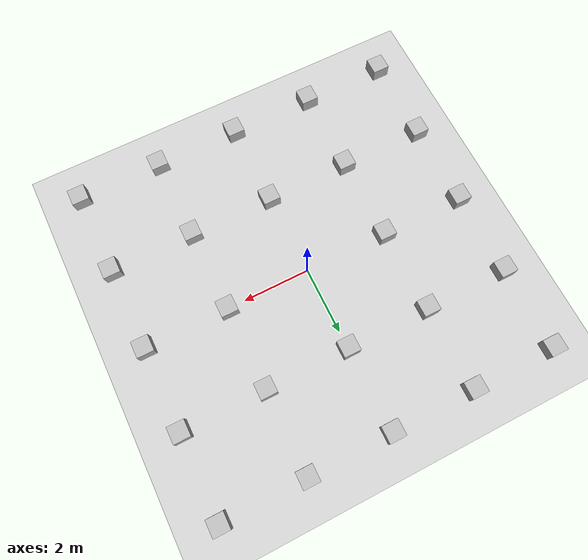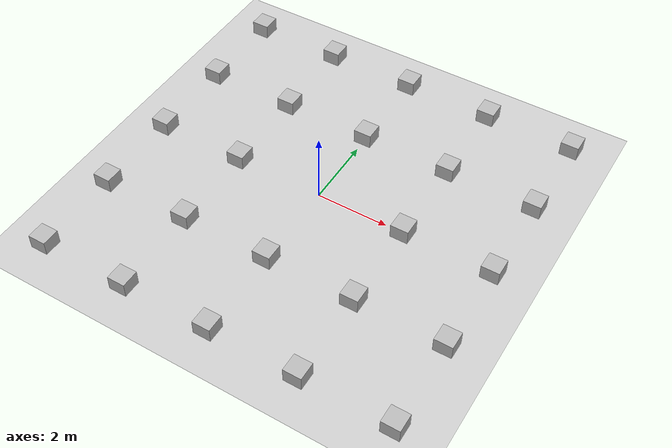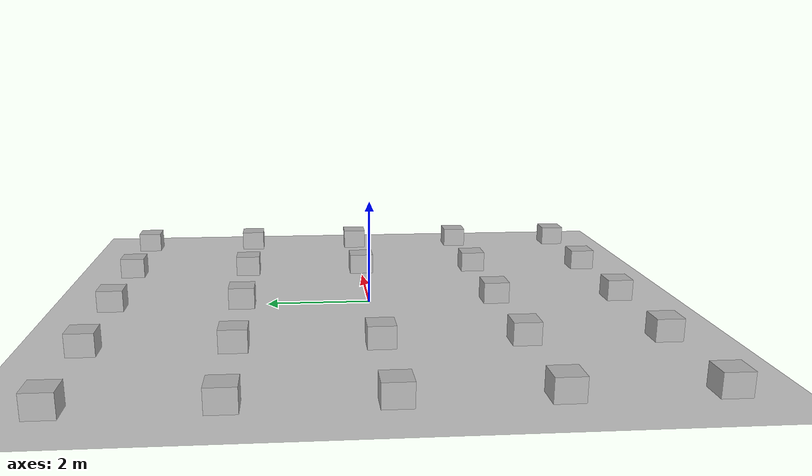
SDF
<?xml version="1.0" ?>
<sdf version="1.8">
  <world name="world_demo">
    <physics name="1ms" type="sdformat">
      <max_step_size>0.001</max_step_size>
      <real_time_factor>1.0</real_time_factor>
    </physics>
    <plugin
      filename="libignition-gazebo-physics-system.so"
      name="ignition::gazebo::systems::Physics">
    </plugin>
    <plugin
      filename="libignition-gazebo-user-commands-system.so"
      name="ignition::gazebo::systems::UserCommands">
    </plugin>
    <plugin
      filename="libignition-gazebo-scene-broadcaster-system.so"
      name="ignition::gazebo::systems::SceneBroadcaster">
    </plugin>
    <!--LiDAR -->
    <plugin
      filename="libignition-gazebo-sensors-system.so"
      name="ignition::gazebo::systems::Sensors">
      <render_engine>ogre2</render_engine>
    </plugin>
    <!--light-->
    <light type="directional" name="sun">
      <cast_shadows>true</cast_shadows>
      <pose>0 0 10 0 0 0</pose>
      <diffuse>0.8 0.8 0.8 1</diffuse>
      <specular>0.2 0.2 0.2 1</specular>
      <attenuation>
        <range>1000</range>
        <constant>0.9</constant>
        <linear>0.01</linear>
        <quadratic>0.001</quadratic>
      </attenuation>
      <direction>-0.5 0.1 -0.9</direction>
    </light>

    <model name="ground_plane">
            <static>true</static>
            <link name="link">
                <collision name="collision">
                <geometry>
                    <plane>
                    <normal>0 0 1</normal>
                    </plane>
                </geometry>
                </collision>
                <visual name="visual">
                <geometry>
                    <plane>
                    <normal>0 0 1</normal>
                    <size>100 100</size>
                    </plane>
                </geometry>
                <material>
                    <ambient>0.8 0.8 0.8 1</ambient>
                    <diffuse>0.8 0.8 0.8 1</diffuse>
                    <specular>0.8 0.8 0.8 1</specular>
                </material>
                </visual>
            </link>
    </model>

    <!-- Box at (1, 0) -->
        <!-- row 0 -->
    <model name="cube_0_0"><pose>-5.0 -5.0 0.15 0 0 0</pose><link name="link"><collision name="collision"><geometry><box><size>0.5 0.5 0.5</size></box></geometry></collision><visual name="visual"><geometry><box><size>0.5 0.5 0.5</size></box></geometry></visual></link></model>
    <model name="cube_0_1"><pose>-5.0 -2.5 0.15 0 0 0</pose><link name="link"><collision name="collision"><geometry><box><size>0.5 0.5 0.5</size></box></geometry></collision><visual name="visual"><geometry><box><size>0.5 0.5 0.5</size></box></geometry></visual></link></model>
    <model name="cube_0_2"><pose>-5.0 0.0 0.15 0 0 0</pose><link name="link"><collision name="collision"><geometry><box><size>0.5 0.5 0.5</size></box></geometry></collision><visual name="visual"><geometry><box><size>0.5 0.5 0.5</size></box></geometry></visual></link></model>
    <model name="cube_0_3"><pose>-5.0 2.5 0.15 0 0 0</pose><link name="link"><collision name="collision"><geometry><box><size>0.5 0.5 0.5</size></box></geometry></collision><visual name="visual"><geometry><box><size>0.5 0.5 0.5</size></box></geometry></visual></link></model>
    <model name="cube_0_4"><pose>-5.0 5.0 0.15 0 0 0</pose><link name="link"><collision name="collision"><geometry><box><size>0.5 0.5 0.5</size></box></geometry></collision><visual name="visual"><geometry><box><size>0.5 0.5 0.5</size></box></geometry></visual></link></model>

    <model name="cube_1_0"><pose>-2.5 -5.0 0.15 0 0 0</pose><link name="link"><collision name="collision"><geometry><box><size>0.3 0.3 0.3</size></box></geometry></collision><visual name="visual"><geometry><box><size>0.5 0.5 0.5</size></box></geometry></visual></link></model>
    <model name="cube_1_1"><pose>-2.5 -2.5 0.15 0 0 0</pose><link name="link"><collision name="collision"><geometry><box><size>0.3 0.3 0.3</size></box></geometry></collision><visual name="visual"><geometry><box><size>0.5 0.5 0.5</size></box></geometry></visual></link></model>
    <model name="cube_1_2"><pose>-2.5 0.0 0.15 0 0 0</pose><link name="link"><collision name="collision"><geometry><box><size>0.3 0.3 0.3</size></box></geometry></collision><visual name="visual"><geometry><box><size>0.5 0.5 0.5</size></box></geometry></visual></link></model>
    <model name="cube_1_3"><pose>-2.5 2.5 0.15 0 0 0</pose><link name="link"><collision name="collision"><geometry><box><size>0.3 0.3 0.3</size></box></geometry></collision><visual name="visual"><geometry><box><size>0.5 0.5 0.5</size></box></geometry></visual></link></model>
    <model name="cube_1_4"><pose>-2.5 5.0 0.15 0 0 0</pose><link name="link"><collision name="collision"><geometry><box><size>0.3 0.3 0.3</size></box></geometry></collision><visual name="visual"><geometry><box><size>0.5 0.5 0.5</size></box></geometry></visual></link></model>

    <model name="cube_2_0"><pose>0.0 -5.0 0.15 0 0 0</pose><link name="link"><collision name="collision"><geometry><box><size>0.3 0.3 0.3</size></box></geometry></collision><visual name="visual"><geometry><box><size>0.5 0.5 0.5</size></box></geometry></visual></link></model>
    <model name="cube_2_1"><pose>0.0 -2.5 0.15 0 0 0</pose><link name="link"><collision name="collision"><geometry><box><size>0.3 0.3 0.3</size></box></geometry></collision><visual name="visual"><geometry><box><size>0.5 0.5 0.5</size></box></geometry></visual></link></model>
    <model name="cube_2_3"><pose>0.0 2.5 0.15 0 0 0</pose><link name="link"><collision name="collision"><geometry><box><size>0.3 0.3 0.3</size></box></geometry></collision><visual name="visual"><geometry><box><size>0.5 0.5 0.5</size></box></geometry></visual></link></model>
    <model name="cube_2_4"><pose>0.0 5.0 0.15 0 0 0</pose><link name="link"><collision name="collision"><geometry><box><size>0.3 0.3 0.3</size></box></geometry></collision><visual name="visual"><geometry><box><size>0.5 0.5 0.5</size></box></geometry></visual></link></model>

    <model name="cube_3_0"><pose>2.5 -5.0 0.15 0 0 0</pose><link name="link"><collision name="collision"><geometry><box><size>0.3 0.3 0.3</size></box></geometry></collision><visual name="visual"><geometry><box><size>0.5 0.5 0.5</size></box></geometry></visual></link></model>
    <model name="cube_3_1"><pose>2.5 -2.5 0.15 0 0 0</pose><link name="link"><collision name="collision"><geometry><box><size>0.3 0.3 0.3</size></box></geometry></collision><visual name="visual"><geometry><box><size>0.5 0.5 0.5</size></box></geometry></visual></link></model>
    <model name="cube_3_2"><pose>2.5 0.0 0.15 0 0 0</pose><link name="link"><collision name="collision"><geometry><box><size>0.3 0.3 0.3</size></box></geometry></collision><visual name="visual"><geometry><box><size>0.5 0.5 0.5</size></box></geometry></visual></link></model>
    <model name="cube_3_3"><pose>2.5 2.5 0.15 0 0 0</pose><link name="link"><collision name="collision"><geometry><box><size>0.3 0.3 0.3</size></box></geometry></collision><visual name="visual"><geometry><box><size>0.5 0.5 0.5</size></box></geometry></visual></link></model>
    <model name="cube_3_4"><pose>2.5 5.0 0.15 0 0 0</pose><link name="link"><collision name="collision"><geometry><box><size>0.3 0.3 0.3</size></box></geometry></collision><visual name="visual"><geometry><box><size>0.5 0.5 0.5</size></box></geometry></visual></link></model>

    <model name="cube_4_0"><pose>5.0 -5.0 0.15 0 0 0</pose><link name="link"><collision name="collision"><geometry><box><size>0.3 0.3 0.3</size></box></geometry></collision><visual name="visual"><geometry><box><size>0.5 0.5 0.5</size></box></geometry></visual></link></model>
    <model name="cube_4_1"><pose>5.0 -2.5 0.15 0 0 0</pose><link name="link"><collision name="collision"><geometry><box><size>0.3 0.3 0.3</size></box></geometry></collision><visual name="visual"><geometry><box><size>0.5 0.5 0.5</size></box></geometry></visual></link></model>
    <model name="cube_4_2"><pose>5.0 0.0 0.15 0 0 0</pose><link name="link"><collision name="collision"><geometry><box><size>0.3 0.3 0.3</size></box></geometry></collision><visual name="visual"><geometry><box><size>0.5 0.5 0.5</size></box></geometry></visual></link></model>
    <model name="cube_4_3"><pose>5.0 2.5 0.15 0 0 0</pose><link name="link"><collision name="collision"><geometry><box><size>0.3 0.3 0.3</size></box></geometry></collision><visual name="visual"><geometry><box><size>0.5 0.5 0.5</size></box></geometry></visual></link></model>
    <model name="cube_4_4"><pose>5.0 5.0 0.15 0 0 0</pose><link name="link"><collision name="collision"><geometry><box><size>0.3 0.3 0.3</size></box></geometry></collision><visual name="visual"><geometry><box><size>0.5 0.5 0.5</size></box></geometry></visual></link></model>

    </world>
</sdf>
